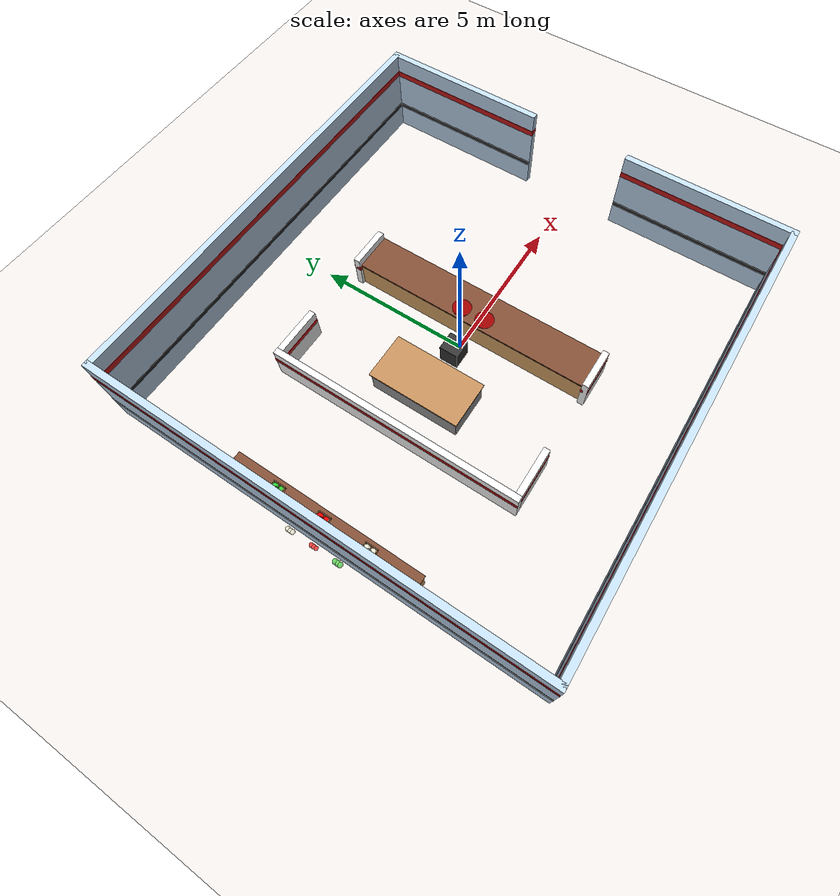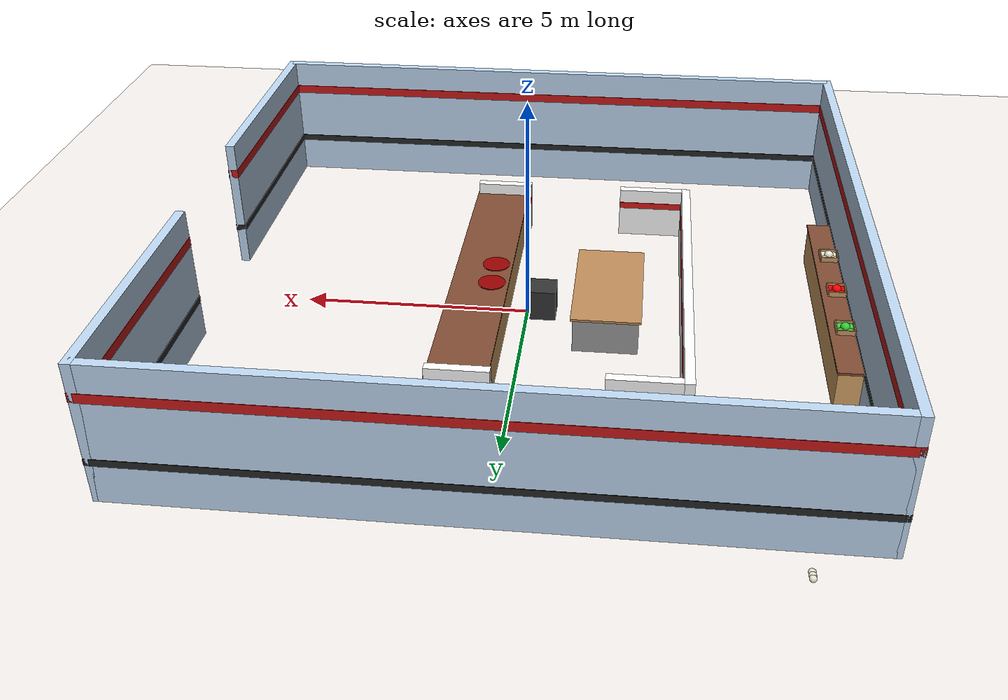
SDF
<sdf version='1.10'>
  <world name='cocina_robotica_recreada'>
    <plugin
      filename="gz-sim-sensors-system"
      name="gz::sim::systems::Sensors">
      <render_engine>ogre2</render_engine>
    </plugin>

    <physics name='1ms' type='ignored'>
      <max_step_size>0.001</max_step_size>
      <real_time_factor>1</real_time_factor>
      <real_time_update_rate>1000</real_time_update_rate>
    </physics>

    <plugin name='gz::sim::systems::Physics' filename='gz-sim-physics-system'/>
    <plugin name='gz::sim::systems::UserCommands' filename='gz-sim-user-commands-system'/>
    <plugin name='gz::sim::systems::SceneBroadcaster' filename='gz-sim-scene-broadcaster-system'/>

    <scene>
      <ambient>0.8 0.8 0.8 1</ambient>
      <background>0.9 0.9 0.9 1</background>
      <shadows>true</shadows>
    </scene>

    <light name='luz_ambiente' type='directional'>
      <pose>0 0 15 0 0 0</pose>
      <cast_shadows>true</cast_shadows>
      <intensity>0.8</intensity>
      <direction>-0.5 0.2 -0.9</direction>
      <diffuse>1 1 1 1</diffuse>
      <specular>0.2 0.2 0.2 1</specular>
    </light>

    <model name='ground_plane'>
      <static>true</static>
      <link name='link'>
        <collision name='collision'>
          <geometry><plane><normal>0 0 1</normal><size>20 20</size></plane></geometry>
        </collision>
        <visual name='visual'>
          <geometry><plane><normal>0 0 1</normal><size>20 20</size></plane></geometry>
          <material>
            <ambient>0.88 0.83 0.78 1</ambient>
            <diffuse>0.9 0.85 0.8 1</diffuse>
          </material>
        </visual>
      </link>
    </model>

    <model name='pared_norte'>
      <static>true</static><pose>0 7 1.5 0 0 0</pose>
      <link name='link'>
        <collision name='col'><geometry><box><size>14 0.2 3.0</size></box></geometry></collision>
        <visual name='vis_base'><geometry><box><size>14 0.2 3.0</size></box></geometry><material><ambient>0.75 0.85 0.95 1</ambient><diffuse>0.75 0.85 0.95 1</diffuse></material></visual>
        <visual name='vis_franja_roja'><pose>0 0 0.8 0 0 0</pose><geometry><box><size>14 0.22 0.2</size></box></geometry><material><ambient>0.7 0.1 0.1 1</ambient><diffuse>0.8 0.1 0.1 1</diffuse></material></visual>
        <visual name='vis_franja_negra'><pose>0 0 -0.6 0 0 0</pose><geometry><box><size>14 0.22 0.15</size></box></geometry><material><ambient>0.1 0.1 0.1 1</ambient><diffuse>0.15 0.15 0.15 1</diffuse></material></visual>
      </link>
    </model>

    <model name='pared_sur'>
      <static>true</static><pose>0 -7 1.5 0 0 0</pose>
      <link name='link'>
        <collision name='col'><geometry><box><size>14 0.2 3.0</size></box></geometry></collision>
        <visual name='vis_base'><geometry><box><size>14 0.2 3.0</size></box></geometry><material><ambient>0.75 0.85 0.95 1</ambient><diffuse>0.75 0.85 0.95 1</diffuse></material></visual>
        <visual name='vis_franja_roja'><pose>0 0 0.8 0 0 0</pose><geometry><box><size>14 0.22 0.2</size></box></geometry><material><ambient>0.7 0.1 0.1 1</ambient><diffuse>0.8 0.1 0.1 1</diffuse></material></visual>
        <visual name='vis_franja_negra'><pose>0 0 -0.6 0 0 0</pose><geometry><box><size>14 0.22 0.15</size></box></geometry><material><ambient>0.1 0.1 0.1 1</ambient><diffuse>0.15 0.15 0.15 1</diffuse></material></visual>
      </link>
    </model>

    <model name='pared_oeste'>
      <static>true</static><pose>-7 0 1.5 0 0 0</pose>
      <link name='link'>
        <collision name='col'><geometry><box><size>0.2 14.2 3.0</size></box></geometry></collision>
        <visual name='vis_base'><geometry><box><size>0.2 14.2 3.0</size></box></geometry><material><ambient>0.75 0.85 0.95 1</ambient><diffuse>0.75 0.85 0.95 1</diffuse></material></visual>
        <visual name='vis_franja_roja'><pose>0 0 0.8 0 0 0</pose><geometry><box><size>0.22 14.2 0.2</size></box></geometry><material><ambient>0.7 0.1 0.1 1</ambient><diffuse>0.8 0.1 0.1 1</diffuse></material></visual>
        <visual name='vis_franja_negra'><pose>0 0 -0.6 0 0 0</pose><geometry><box><size>0.22 14.2 0.15</size></box></geometry><material><ambient>0.1 0.1 0.1 1</ambient><diffuse>0.15 0.15 0.15 1</diffuse></material></visual>
      </link>
    </model>

    <model name='pared_este_norte'>
      <static>true</static><pose>7 4.35 1.5 0 0 0</pose>
      <link name='link'>
        <collision name='col'><geometry><box><size>0.2 5.5 3.0</size></box></geometry></collision>
        <visual name='vis_base'><geometry><box><size>0.2 5.5 3.0</size></box></geometry><material><ambient>0.75 0.85 0.95 1</ambient><diffuse>0.75 0.85 0.95 1</diffuse></material></visual>
        <visual name='vis_franja_roja'><pose>0 0 0.8 0 0 0</pose><geometry><box><size>0.22 5.5 0.2</size></box></geometry><material><ambient>0.7 0.1 0.1 1</ambient><diffuse>0.8 0.1 0.1 1</diffuse></material></visual>
        <visual name='vis_franja_negra'><pose>0 0 -0.6 0 0 0</pose><geometry><box><size>0.22 5.5 0.15</size></box></geometry><material><ambient>0.1 0.1 0.1 1</ambient><diffuse>0.15 0.15 0.15 1</diffuse></material></visual>
      </link>
    </model>

    <model name='pared_este_sur'>
      <static>true</static><pose>7 -4.35 1.5 0 0 0</pose>
      <link name='link'>
        <collision name='col'><geometry><box><size>0.2 5.5 3.0</size></box></geometry></collision>
        <visual name='vis_base'><geometry><box><size>0.2 5.5 3.0</size></box></geometry><material><ambient>0.75 0.85 0.95 1</ambient><diffuse>0.75 0.85 0.95 1</diffuse></material></visual>
        <visual name='vis_franja_roja'><pose>0 0 0.8 0 0 0</pose><geometry><box><size>0.22 5.5 0.2</size></box></geometry><material><ambient>0.7 0.1 0.1 1</ambient><diffuse>0.8 0.1 0.1 1</diffuse></material></visual>
        <visual name='vis_franja_negra'><pose>0 0 -0.6 0 0 0</pose><geometry><box><size>0.22 5.5 0.15</size></box></geometry><material><ambient>0.1 0.1 0.1 1</ambient><diffuse>0.15 0.15 0.15 1</diffuse></material></visual>
      </link>
    </model>

    <model name='semimuro_izq_frontal'>
      <static>true</static>
      <pose>0.95 4 0.6 0 0 0</pose> <link name='link'>
        <collision name='col'><geometry><box><size>1.3 0.2 1.2</size></box></geometry></collision>
        <visual name='vis_blanco'>
          <geometry><box><size>1.3 0.2 1.2</size></box></geometry>
          <material><ambient>0.95 0.95 0.95 1</ambient><diffuse>1 1 1 1</diffuse></material>
        </visual>
        <visual name='vis_franja_roja_muro'>
          <pose>0 0 0.2 0 0 0</pose>
          <geometry><box><size>1.3 0.22 0.15</size></box></geometry>
          <material><ambient>0.8 0.1 0.1 1</ambient><diffuse>0.85 0.1 0.1 1</diffuse></material>
        </visual>
      </link>
    </model>

    <model name='semimuro_izq_trasero'>
      <static>true</static>
      <pose>-2.65 4 0.6 0 0 0</pose> <link name='link'>
        <collision name='col'><geometry><box><size>1.5 0.2 1.2</size></box></geometry></collision>
        <visual name='vis_blanco'>
          <geometry><box><size>1.5 0.2 1.2</size></box></geometry>
          <material><ambient>0.95 0.95 0.95 1</ambient><diffuse>1 1 1 1</diffuse></material>
        </visual>
        <visual name='vis_franja_roja_muro'>
          <pose>0 0 0.2 0 0 0</pose>
          <geometry><box><size>1.5 0.22 0.15</size></box></geometry>
          <material><ambient>0.8 0.1 0.1 1</ambient><diffuse>0.85 0.1 0.1 1</diffuse></material>
        </visual>
      </link>
    </model>

    <model name='semimuro_der_frontal'>
      <static>true</static>
      <pose>0.95 -4 0.6 0 0 0</pose> <link name='link'>
        <collision name='col'><geometry><box><size>1.3 0.2 1.2</size></box></geometry></collision>
        <visual name='vis_blanco'>
          <geometry><box><size>1.3 0.2 1.2</size></box></geometry>
          <material><ambient>0.95 0.95 0.95 1</ambient><diffuse>1 1 1 1</diffuse></material>
        </visual>
        <visual name='vis_franja_roja_muro'>
          <pose>0 0 0.2 0 0 0</pose>
          <geometry><box><size>1.3 0.22 0.15</size></box></geometry>
          <material><ambient>0.8 0.1 0.1 1</ambient><diffuse>0.85 0.1 0.1 1</diffuse></material>
        </visual>
      </link>
    </model>

    <model name='semimuro_der_trasero'>
      <static>true</static>
      <pose>-2.65 -4 0.6 0 0 0</pose>
      <link name='link'>
        <collision name='col'><geometry><box><size>1.5 0.2 1.2</size></box></geometry></collision>
        <visual name='vis_blanco'>
          <geometry><box><size>1.5 0.2 1.2</size></box></geometry>
          <material><ambient>0.95 0.95 0.95 1</ambient><diffuse>1 1 1 1</diffuse></material>
        </visual>
        <visual name='vis_franja_roja_muro'>
          <pose>0 0 0.2 0 0 0</pose>
          <geometry><box><size>1.5 0.22 0.15</size></box></geometry>
          <material><ambient>0.8 0.1 0.1 1</ambient><diffuse>0.85 0.1 0.1 1</diffuse></material>
        </visual>
      </link>
    </model>

    <model name='semimuro_trasero'>
      <static>true</static>
      <pose>-3.5 0 0.6 0 0 0</pose> <link name='link'>
        <collision name='col'><geometry><box><size>0.2 8.2 1.2</size></box></geometry></collision>
        <visual name='vis_blanco'>
          <geometry><box><size>0.2 8.2 1.2</size></box></geometry>
          <material><ambient>0.95 0.95 0.95 1</ambient><diffuse>1 1 1 1</diffuse></material>
        </visual>
        <visual name='vis_franja_roja_muro'>
          <pose>0 0 0.2 0 0 0</pose>
          <geometry><box><size>0.22 8.2 0.15</size></box></geometry>
          <material><ambient>0.8 0.1 0.1 1</ambient><diffuse>0.85 0.1 0.1 1</diffuse></material>
        </visual>
      </link>
    </model>

    <model name='barra_carga'>
      <static>true</static>
      <pose>1.0 0 0.45 0 0 0</pose> <link name='link'>
        <collision name='col_base'><geometry><box><size>1.2 8.0 0.9</size></box></geometry></collision>

        <collision name='col_top'>
          <pose>0 0 0.46 0 0 0</pose>
          <geometry><box><size>1.25 8.1 0.05</size></box></geometry>
        </collision>

        <visual name='vis_base'>
          <geometry><box><size>1.2 8.0 0.9</size></box></geometry>
          <material><ambient>0.85 0.65 0.4 1</ambient><diffuse>0.85 0.65 0.4 1</diffuse></material>
        </visual>
        <visual name='vis_top'>
          <pose>0 0 0.46 0 0 0</pose>
          <geometry><box><size>1.25 8.1 0.05</size></box></geometry>
          <material><ambient>0.45 0.25 0.15 1</ambient><diffuse>0.5 0.3 0.2 1</diffuse></material>
        </visual>
      </link>
    </model>

    <model name='mesa_preparacion'>
      <static>true</static>
      <pose>-1.8 0 0.4 0 0 0</pose> <link name='link'>
        <collision name='col'><geometry><box><size>1.5 3.0 0.8</size></box></geometry></collision>
        <visual name='vis_base'>
          <geometry><box><size>1.4 2.9 0.8</size></box></geometry>
          <material><ambient>0.6 0.6 0.6 1</ambient><diffuse>0.6 0.6 0.6 1</diffuse></material>
        </visual>
        <visual name='vis_top'>
          <pose>0 0 0.4 0 0 0</pose>
          <geometry><box><size>1.5 3.0 0.05</size></box></geometry>
          <material><ambient>0.7 0.5 0.3 1</ambient><diffuse>0.75 0.55 0.35 1</diffuse></material>
        </visual>
      </link>
    </model>

    <model name='pedestal_brazo_1'>
      <static>true</static>
      <pose>-0.35 0 0.35 0 0 0</pose> <link name='link'>
        <collision name='col'><geometry><box><size>0.6 0.6 0.7</size></box></geometry></collision>
        <visual name='vis'><geometry><box><size>0.6 0.6 0.7</size></box></geometry><material><ambient>0.2 0.2 0.2 1</ambient><diffuse>0.2 0.2 0.2 1</diffuse></material></visual>
      </link>
    </model>

  <model name='encimera_despensa'>
      <static>true</static>
      <pose>-6.7 0 0.45 0 0 0</pose>
      <link name='link'>
        <collision name='col'>
          <geometry><box><size>0.6 6.0 0.9</size></box></geometry>
        </collision>
        <visual name='vis_base'>
          <geometry><box><size>0.6 6.0 0.9</size></box></geometry>
          <material>
            <ambient>0.85 0.65 0.4 1</ambient>
            <diffuse>0.85 0.65 0.4 1</diffuse>
          </material>
        </visual>
        <visual name='vis_top'>
          <pose>0 0 0.46 0 0 0</pose>
          <geometry><box><size>0.65 6.1 0.05</size></box></geometry>
          <material>
            <ambient>0.45 0.25 0.15 1</ambient>
            <diffuse>0.5 0.3 0.2 1</diffuse>
          </material>
        </visual>
      </link>
    </model>

  <model name='deco_caja_tomates'>
    <static>true</static>
    <pose>-6.7 0.0 0.85 0 0 0</pose>

    <link name='link'>
      <visual name='base_carton'>
        <pose>0 0 0.01 0 0 0</pose>
        <geometry><box><size>0.4 0.4 0.02</size></box></geometry>
        <material><ambient>0.7 0.5 0.3 1</ambient><diffuse>0.8 0.6 0.4 1</diffuse></material>
      </visual>
      <visual name='pared_f'>
        <pose>0.19 0 0.1 0 0 0</pose>
        <geometry><box><size>0.02 0.4 0.2</size></box></geometry>
        <material><ambient>0.7 0.5 0.3 1</ambient><diffuse>0.8 0.6 0.4 1</diffuse></material>
      </visual>
      <visual name='pared_t'>
        <pose>-0.19 0 0.1 0 0 0</pose>
        <geometry><box><size>0.02 0.4 0.2</size></box></geometry>
        <material><ambient>0.7 0.5 0.3 1</ambient><diffuse>0.8 0.6 0.4 1</diffuse></material>
      </visual>
      <visual name='pared_i'>
        <pose>0 0.19 0.1 0 0 0</pose>
        <geometry><box><size>0.36 0.02 0.2</size></box></geometry>
        <material><ambient>0.7 0.5 0.3 1</ambient><diffuse>0.8 0.6 0.4 1</diffuse></material>
      </visual>
      <visual name='pared_d'>
        <pose>0 -0.19 0.1 0 0 0</pose>
        <geometry><box><size>0.36 0.02 0.2</size></box></geometry>
        <material><ambient>0.7 0.5 0.3 1</ambient><diffuse>0.8 0.6 0.4 1</diffuse></material>
      </visual>

      <visual name='tomate_1'>
        <pose>-0.1 -0.1 0.08 0 0 0</pose>
        <geometry><sphere><radius>0.10</radius></sphere></geometry>
        <material><ambient>0.8 0 0 1</ambient><diffuse>1 0 0 1</diffuse></material>
      </visual>
      <visual name='tomate_2'>
        <pose>0.1 -0.1 0.08 0 0 0</pose>
        <geometry><sphere><radius>0.10</radius></sphere></geometry>
        <material><ambient>0.8 0 0 1</ambient><diffuse>1 0 0 1</diffuse></material>
      </visual>
      <visual name='tomate_3'>
        <pose>-0.1 0.1 0.08 0 0 0</pose>
        <geometry><sphere><radius>0.10</radius></sphere></geometry>
        <material><ambient>0.8 0 0 1</ambient><diffuse>1 0 0 1</diffuse></material>
      </visual>
      <visual name='tomate_4'>
        <pose>0.1 0.1 0.08 0 0 0</pose>
        <geometry><sphere><radius>0.10</radius></sphere></geometry>
        <material><ambient>0.8 0 0 1</ambient><diffuse>1 0 0 1</diffuse></material>
      </visual>
      <visual name='tomate_5'>
        <pose>0 0 0.16 0 0 0</pose>
        <geometry><sphere><radius>0.10</radius></sphere></geometry>
        <material><ambient>0.8 0 0 1</ambient><diffuse>1 0 0 1</diffuse></material>
      </visual>

      <collision name='colision_global'>
        <pose>0 0 0.1 0 0 0</pose>
        <geometry><box><size>0.4 0.4 0.2</size></box></geometry>
      </collision>
    </link>
  </model>

  <model name='deco_caja_lechugas'>
    <static>true</static>
    <pose>-6.7 1.5 0.85 0 0 0</pose>

    <link name='link'>
      <visual name='base_carton'>
        <pose>0 0 0.01 0 0 0</pose>
        <geometry><box><size>0.4 0.4 0.02</size></box></geometry>
        <material><ambient>0.7 0.5 0.3 1</ambient><diffuse>0.8 0.6 0.4 1</diffuse></material>
      </visual>
      <visual name='pared_f'>
        <pose>0.19 0 0.1 0 0 0</pose>
        <geometry><box><size>0.02 0.4 0.2</size></box></geometry>
        <material><ambient>0.7 0.5 0.3 1</ambient><diffuse>0.8 0.6 0.4 1</diffuse></material>
      </visual>
      <visual name='pared_t'>
        <pose>-0.19 0 0.1 0 0 0</pose>
        <geometry><box><size>0.02 0.4 0.2</size></box></geometry>
        <material><ambient>0.7 0.5 0.3 1</ambient><diffuse>0.8 0.6 0.4 1</diffuse></material>
      </visual>
      <visual name='pared_i'>
        <pose>0 0.19 0.1 0 0 0</pose>
        <geometry><box><size>0.36 0.02 0.2</size></box></geometry>
        <material><ambient>0.7 0.5 0.3 1</ambient><diffuse>0.8 0.6 0.4 1</diffuse></material>
      </visual>
      <visual name='pared_d'>
        <pose>0 -0.19 0.1 0 0 0</pose>
        <geometry><box><size>0.36 0.02 0.2</size></box></geometry>
        <material><ambient>0.7 0.5 0.3 1</ambient><diffuse>0.8 0.6 0.4 1</diffuse></material>
      </visual>

      <visual name='lechuga_1'>
        <pose>-0.1 -0.1 0.08 0 0 0</pose>
        <geometry><sphere><radius>0.10</radius></sphere></geometry>
        <material><ambient>0.1 0.6 0.1 1</ambient><diffuse>0.2 0.8 0.2 1</diffuse></material>
      </visual>
      <visual name='lechuga_2'>
        <pose>0.1 -0.1 0.08 0 0 0</pose>
        <geometry><sphere><radius>0.10</radius></sphere></geometry>
        <material><ambient>0.1 0.6 0.1 1</ambient><diffuse>0.2 0.8 0.2 1</diffuse></material>
      </visual>
      <visual name='lechuga_3'>
        <pose>-0.1 0.1 0.08 0 0 0</pose>
        <geometry><sphere><radius>0.10</radius></sphere></geometry>
        <material><ambient>0.1 0.6 0.1 1</ambient><diffuse>0.2 0.8 0.2 1</diffuse></material>
      </visual>
      <visual name='lechuga_4'>
        <pose>0.1 0.1 0.08 0 0 0</pose>
        <geometry><sphere><radius>0.10</radius></sphere></geometry>
        <material><ambient>0.1 0.6 0.1 1</ambient><diffuse>0.2 0.8 0.2 1</diffuse></material>
      </visual>
      <visual name='lechuga_5'>
        <pose>0 0 0.16 0 0 0</pose>
        <geometry><sphere><radius>0.10</radius></sphere></geometry>
        <material><ambient>0.1 0.6 0.1 1</ambient><diffuse>0.2 0.8 0.2 1</diffuse></material>
      </visual>

      <collision name='colision_global'>
        <pose>0 0 0.1 0 0 0</pose>
        <geometry><box><size>0.4 0.4 0.2</size></box></geometry>
      </collision>
    </link>
  </model>

<model name='deco_caja_cebollas'>
    <static>true</static>
    <pose>-6.7 -1.5 0.85 0 0 0</pose>

    <link name='link'>
      <visual name='base_carton'>
        <pose>0 0 0.01 0 0 0</pose>
        <geometry><box><size>0.4 0.4 0.02</size></box></geometry>
        <material><ambient>0.7 0.5 0.3 1</ambient><diffuse>0.8 0.6 0.4 1</diffuse></material>
      </visual>
      <visual name='pared_f'>
        <pose>0.19 0 0.1 0 0 0</pose>
        <geometry><box><size>0.02 0.4 0.2</size></box></geometry>
        <material><ambient>0.7 0.5 0.3 1</ambient><diffuse>0.8 0.6 0.4 1</diffuse></material>
      </visual>
      <visual name='pared_t'>
        <pose>-0.19 0 0.1 0 0 0</pose>
        <geometry><box><size>0.02 0.4 0.2</size></box></geometry>
        <material><ambient>0.7 0.5 0.3 1</ambient><diffuse>0.8 0.6 0.4 1</diffuse></material>
      </visual>
      <visual name='pared_i'>
        <pose>0 0.19 0.1 0 0 0</pose>
        <geometry><box><size>0.36 0.02 0.2</size></box></geometry>
        <material><ambient>0.7 0.5 0.3 1</ambient><diffuse>0.8 0.6 0.4 1</diffuse></material>
      </visual>
      <visual name='pared_d'>
        <pose>0 -0.19 0.1 0 0 0</pose>
        <geometry><box><size>0.36 0.02 0.2</size></box></geometry>
        <material><ambient>0.7 0.5 0.3 1</ambient><diffuse>0.8 0.6 0.4 1</diffuse></material>
      </visual>

      <visual name='cebolla_1'>
        <pose>-0.1 -0.1 0.08 0 0 0</pose>
        <geometry><sphere><radius>0.10</radius></sphere></geometry>
        <material><ambient>0.8 0.8 0.7 1</ambient><diffuse>0.9 0.9 0.8 1</diffuse></material>
      </visual>
      <visual name='cebolla_2'>
        <pose>0.1 -0.1 0.08 0 0 0</pose>
        <geometry><sphere><radius>0.10</radius></sphere></geometry>
        <material><ambient>0.8 0.8 0.7 1</ambient><diffuse>0.9 0.9 0.8 1</diffuse></material>
      </visual>
      <visual name='cebolla_3'>
        <pose>-0.1 0.1 0.08 0 0 0</pose>
        <geometry><sphere><radius>0.10</radius></sphere></geometry>
        <material><ambient>0.8 0.8 0.7 1</ambient><diffuse>0.9 0.9 0.8 1</diffuse></material>
      </visual>
      <visual name='cebolla_4'>
        <pose>0.1 0.1 0.08 0 0 0</pose>
        <geometry><sphere><radius>0.10</radius></sphere></geometry>
        <material><ambient>0.8 0.8 0.7 1</ambient><diffuse>0.9 0.9 0.8 1</diffuse></material>
      </visual>
      <visual name='cebolla_5'>
        <pose>0 0 0.16 0 0 0</pose>
        <geometry><sphere><radius>0.10</radius></sphere></geometry>
        <material><ambient>0.8 0.8 0.7 1</ambient><diffuse>0.9 0.9 0.8 1</diffuse></material>
      </visual>

      <collision name='colision_global'>
        <pose>0 0 0.1 0 0 0</pose>
        <geometry><box><size>0.4 0.4 0.2</size></box></geometry>
      </collision>
    </link>
  </model>

  <model name='plato_final_0'>
      <pose>0.74 0.4 0.96 0 0 0</pose>
      <link name='link'>

        <inertial><mass>0.3</mass><inertia><ixx>0.001</ixx><iyy>0.001</iyy><izz>0.001</izz></inertia></inertial>

        <collision name='col'><geometry><cylinder><radius>0.30</radius><length>0.04</length></cylinder></geometry></collision>
        <visual name='vis'><geometry><cylinder><radius>0.30</radius><length>0.02</length></cylinder></geometry><material><ambient>0.6 0 0 1</ambient><diffuse>0.6 0 0 1</diffuse><specular>0.5 0.5 0.5 1</specular></material></visual>
      </link>
  </model>

  <model name='plato_final_1'>
    <pose>0.74 -0.4 0.96 0 0 0</pose>
    <link name='link'>

      <inertial><mass>0.3</mass><inertia><ixx>0.001</ixx><iyy>0.001</iyy><izz>0.001</izz></inertia></inertial>

      <collision name='col'><geometry><cylinder><radius>0.30</radius><length>0.04</length></cylinder></geometry></collision>
      <visual name='vis'><geometry><cylinder><radius>0.30</radius><length>0.02</length></cylinder></geometry><material><ambient>0.6 0 0 1</ambient><diffuse>0.6 0 0 1</diffuse><specular>0.5 0.5 0.5 1</specular></material></visual>
    </link>
  </model>

  <model name='lechuga_1'>
    <pose>-6.7 0.4 -5.0 0 0 0</pose>
    <link name='link'>
      <inertial><mass>0.5</mass><inertia><ixx>0.0033</ixx><iyy>0.0033</iyy><izz>0.0033</izz></inertia></inertial>
      <collision name='col'><geometry><box><size>0.2 0.2 0.2</size></box></geometry></collision>
      <visual name='vis'><geometry><sphere><radius>0.1</radius></sphere></geometry>
        <material><ambient>0.1 0.6 0.1 1</ambient><diffuse>0.2 0.8 0.2 1</diffuse></material></visual>
    </link>
  </model>
  <model name='lechuga_2'>
    <pose>-6.7 0.5 -5.0 0 0 0</pose>
    <link name='link'>
      <inertial><mass>0.5</mass><inertia><ixx>0.0033</ixx><iyy>0.0033</iyy><izz>0.0033</izz></inertia></inertial>
      <collision name='col'><geometry><box><size>0.2 0.2 0.2</size></box></geometry></collision>
      <visual name='vis'><geometry><sphere><radius>0.1</radius></sphere></geometry>
        <material><ambient>0.1 0.6 0.1 1</ambient><diffuse>0.2 0.8 0.2 1</diffuse></material></visual>
    </link>
  </model>
  <model name='lechuga_3'>
    <pose>-6.7 0.6 -5.0 0 0 0</pose>
    <link name='link'>
      <inertial><mass>0.5</mass><inertia><ixx>0.0033</ixx><iyy>0.0033</iyy><izz>0.0033</izz></inertia></inertial>
      <collision name='col'><geometry><box><size>0.2 0.2 0.2</size></box></geometry></collision>
      <visual name='vis'><geometry><sphere><radius>0.1</radius></sphere></geometry>
        <material><ambient>0.1 0.6 0.1 1</ambient><diffuse>0.2 0.8 0.2 1</diffuse></material></visual>
    </link>
  </model>

  <model name='tomate_1'>
    <pose>-6.7 1.4 -5.0 0 0 0</pose>
    <link name='link'>
      <inertial><mass>0.3</mass><inertia><ixx>0.002</ixx><iyy>0.002</iyy><izz>0.002</izz></inertia></inertial>
      <collision name='col'><geometry><box><size>0.15 0.15 0.15</size></box></geometry></collision>
      <visual name='vis'><geometry><sphere><radius>0.08</radius></sphere></geometry>
        <material><ambient>0.8 0 0 1</ambient><diffuse>1 0 0 1</diffuse></material></visual>
    </link>
  </model>
  <model name='tomate_2'>
    <pose>-6.7 1.5 -5.0 0 0 0</pose>
    <link name='link'>
      <inertial><mass>0.3</mass><inertia><ixx>0.002</ixx><iyy>0.002</iyy><izz>0.002</izz></inertia></inertial>
      <collision name='col'><geometry><box><size>0.15 0.15 0.15</size></box></geometry></collision>
      <visual name='vis'><geometry><sphere><radius>0.08</radius></sphere></geometry>
        <material><ambient>0.8 0 0 1</ambient><diffuse>1 0 0 1</diffuse></material></visual>
    </link>
  </model>
  <model name='tomate_3'>
    <pose>-6.7 1.6 -5.0 0 0 0</pose>
    <link name='link'>
      <inertial><mass>0.3</mass><inertia><ixx>0.002</ixx><iyy>0.002</iyy><izz>0.002</izz></inertia></inertial>
      <collision name='col'><geometry><box><size>0.15 0.15 0.15</size></box></geometry></collision>
      <visual name='vis'><geometry><sphere><radius>0.08</radius></sphere></geometry>
        <material><ambient>0.8 0 0 1</ambient><diffuse>1 0 0 1</diffuse></material></visual>
    </link>
  </model>

  <model name='cebolla_1'>
    <pose>-6.7 2.4 -5.0 0 0 0</pose>
    <link name='link'>
      <inertial><mass>0.4</mass><inertia><ixx>0.0025</ixx><iyy>0.0025</iyy><izz>0.0025</izz></inertia></inertial>
      <collision name='col'><geometry><box><size>0.16 0.16 0.16</size></box></geometry></collision>
      <visual name='vis'><geometry><sphere><radius>0.09</radius></sphere></geometry>
        <material><ambient>0.8 0.8 0.7 1</ambient><diffuse>0.9 0.9 0.8 1</diffuse></material></visual>
    </link>
  </model>
  <model name='cebolla_2'>
    <pose>-6.7 2.5 -5.0 0 0 0</pose>
    <link name='link'>
      <inertial><mass>0.4</mass><inertia><ixx>0.0025</ixx><iyy>0.0025</iyy><izz>0.0025</izz></inertia></inertial>
      <collision name='col'><geometry><box><size>0.16 0.16 0.16</size></box></geometry></collision>
      <visual name='vis'><geometry><sphere><radius>0.09</radius></sphere></geometry>
        <material><ambient>0.8 0.8 0.7 1</ambient><diffuse>0.9 0.9 0.8 1</diffuse></material></visual>
    </link>
  </model>
  <model name='cebolla_3'>
    <pose>-6.7 2.6 -5.0 0 0 0</pose>
    <link name='link'>
      <inertial><mass>0.4</mass><inertia><ixx>0.0025</ixx><iyy>0.0025</iyy><izz>0.0025</izz></inertia></inertial>
      <collision name='col'><geometry><box><size>0.16 0.16 0.16</size></box></geometry></collision>
      <visual name='vis'><geometry><sphere><radius>0.09</radius></sphere></geometry>
        <material><ambient>0.8 0.8 0.7 1</ambient><diffuse>0.9 0.9 0.8 1</diffuse></material></visual>
    </link>
  </model>

  <model name='plato_1'>
    <pose>0.74 0 -5 0 0 0</pose>
    <link name='link'>

      <inertial><mass>0.3</mass><inertia><ixx>0.001</ixx><iyy>0.001</iyy><izz>0.001</izz></inertia></inertial>

      <collision name='col'> <geometry><cylinder><radius>0.30</radius><length>0.04</length></cylinder></geometry></collision>
      <visual name='vis'><geometry><cylinder><radius>0.15</radius><length>0.02</length></cylinder></geometry>
        <material><ambient>1 1 1 1</ambient> <diffuse>1 1 1 1</diffuse><specular>0.5 0.5 0.5 1</specular></material></visual>
    </link>
  </model>

  <model name='plato_2'>
    <pose>0.74 0 -5 0 0 0</pose>
    <link name='link'>

      <inertial><mass>0.3</mass><inertia><ixx>0.001</ixx><iyy>0.001</iyy><izz>0.001</izz></inertia></inertial>

      <collision name='col'> <geometry><cylinder><radius>0.30</radius><length>0.04</length></cylinder></geometry></collision>
      <visual name='vis'><geometry><cylinder><radius>0.15</radius><length>0.02</length></cylinder></geometry>
        <material><ambient>1 1 1 1</ambient> <diffuse>1 1 1 1</diffuse><specular>0.5 0.5 0.5 1</specular></material></visual>
    </link>
  </model>

  <model name='plato_3'>
    <pose>0.74 0 -5 0 0 0</pose>
    <link name='link'>

      <inertial><mass>0.3</mass><inertia><ixx>0.001</ixx><iyy>0.001</iyy><izz>0.001</izz></inertia></inertial>

      <collision name='col'> <geometry><cylinder><radius>0.30</radius><length>0.04</length></cylinder></geometry></collision>
      <visual name='vis'><geometry><cylinder><radius>0.15</radius><length>0.02</length></cylinder></geometry>
        <material><ambient>1 1 1 1</ambient> <diffuse>1 1 1 1</diffuse><specular>0.5 0.5 0.5 1</specular></material></visual>
    </link>
  </model>

  </world>
</sdf>
